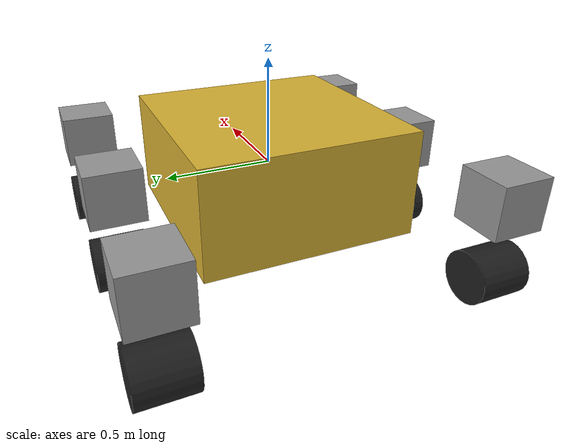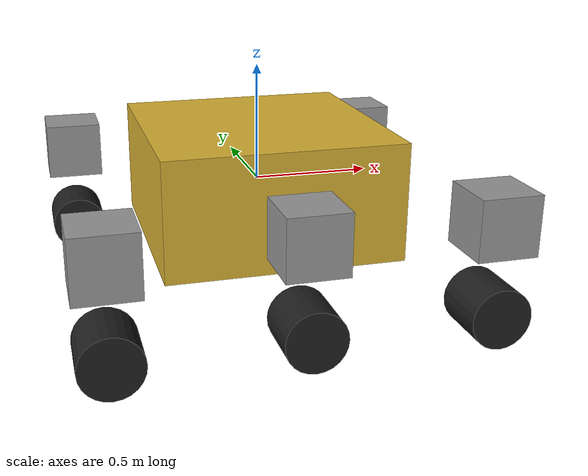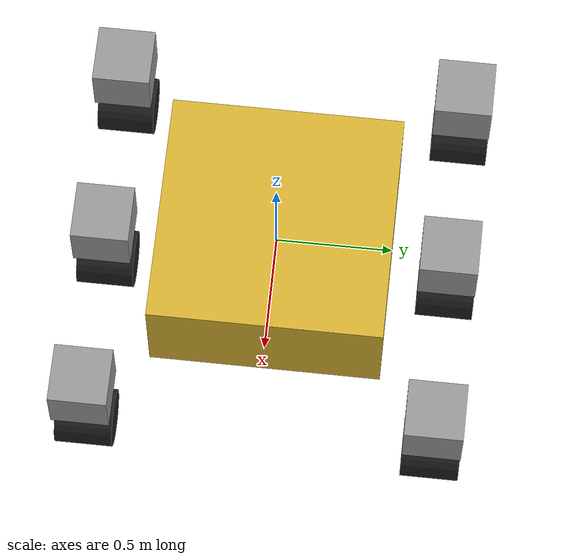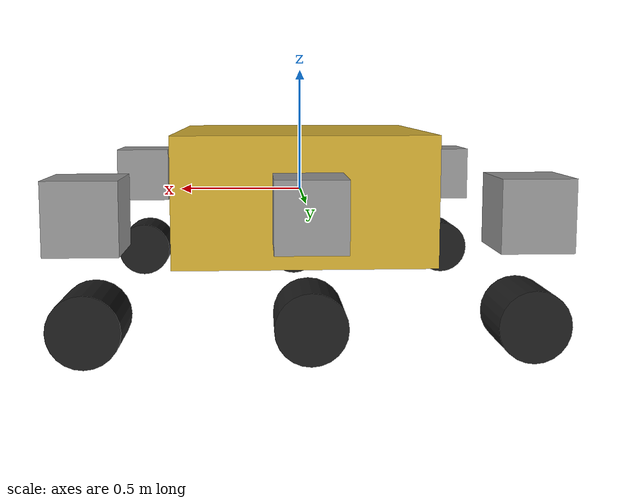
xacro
<?xml version="1.0"?>
<robot name="rover_dummy" xmlns:xacro="http://www.ros.org/wiki/xacro">
  <xacro:property name="mass" value="1.0" />
  <xacro:property name="damping" value="0.1" />
  <xacro:property name="friction" value="0.1" />
  <xacro:property name="size_base" value="1.0" />
  <xacro:property name="size_link" value="0.25" />
  <!-- Warning: the wheel_radius value must be the same as in the YAML configuration file-->
  <xacro:property name="wheel_radius" value="${size_link / 2}" />

  <xacro:property name="limit_drive_effort" value="100.0" />
  <xacro:property name="limit_drive_velocity" value="1.0" />
  <xacro:property name="limit_steer_effort" value="100.0" />
  <xacro:property name="limit_steer_lower" value="${-pi / 2}" />
  <xacro:property name="limit_steer_upper" value="${pi / 2}" />
  <xacro:property name="limit_steer_velocity" value="1.0" />

  <!-- Import all Gazebo-customization elements, including Gazebo colors and plugins -->
  <xacro:include filename="$(find rover_locomotion)/urdf/rover_dummy.gazebo" />

  <!-- Base of the rover, must be named "base_link" -->
  <link name="base_link">
    <collision>
      <origin xyz="0 0 0" rpy="0 0 0"/>
      <geometry>
        <box size="${size_base} ${size_base} ${size_base / 2}"/>
      </geometry>
    </collision>
    <inertial>
       <mass value="${mass}"/>
        <inertia
            ixx="${mass / 12.0 * (5 * size_base * size_base / 16)}"
            iyy="${mass / 12.0 * (5 * size_base * size_base / 16)}"
            izz="${mass / 12.0 * (size_base * size_base / 2)}"
            ixy="0"
            ixz="0"
            iyz="0"/>
    </inertial>
    <visual>
      <origin xyz="0 0 0" rpy="0 0 0"/>
      <geometry>
        <box size="${size_base} ${size_base} ${size_base / 2}"/>
      </geometry>
    </visual>
  </link>

  <!-- Definition for a wheel assembly -->
  <xacro:macro name="wheel_assembly" params="position *origin">
    <joint name="joint_steer_${position}" type="revolute">
      <parent link="base_link"/>
      <child link="link_${position}"/>
      <limit effort="${limit_steer_effort}" lower="${limit_steer_lower}" upper="${limit_steer_upper}" velocity="${limit_steer_velocity}"/>
      <xacro:insert_block name="origin" />
      <axis xyz="0 0 1"/>
      <dynamics damping="${damping}" friction="${friction}"/>
    </joint>

    <link name="link_${position}">
      <collision>
        <origin xyz="0 0 0" rpy="0 0 0"/>
        <geometry>
          <box size="${size_link} ${size_link} ${size_link}"/>
        </geometry>
      </collision>
      <inertial>
          <mass value="${mass}"/>
          <inertia
              ixx="${mass / 12.0 * (size_link * size_link / 2)}"
              iyy="${mass / 12.0 * (size_link * size_link / 2)}"
              izz="${mass / 12.0 * (size_link * size_link / 2)}"
              ixy="0"
              ixz="0"
              iyz="0"/>
      </inertial>
      <visual>
        <origin xyz="0 0 0" rpy="0 0 0"/>
        <geometry>
          <box size="${size_link} ${size_link} ${size_link}"/>
        </geometry>
      </visual>
    </link>

    <joint name="joint_drive_${position}" type="continuous">
      <parent link="link_${position}"/>
      <child link="wheel_${position}"/>
      <limit effort="${limit_drive_effort}" velocity="${limit_drive_velocity}"/>
      <origin xyz="0 0 ${-size_link / 2 - 2 * wheel_radius}" rpy="0 0 0"/>
      <axis xyz="0 1 0"/>
      <dynamics damping="${damping}" friction="${friction}"/>
    </joint>

    <link name="wheel_${position}">
      <collision>
        <origin xyz="0 0 0" rpy="${pi / 2} 0 0"/>
        <geometry>
          <cylinder length="${size_link}" radius="${wheel_radius}"/>
        </geometry>
      </collision>
      <inertial>
          <mass value="${mass}"/>
          <inertia
              ixx="${mass / 12.0 * (3 * wheel_radius * wheel_radius + size_link * size_link)}"
              iyy="${mass / 12.0 * (3 * wheel_radius * wheel_radius + size_link * size_link)}"
              izz="${mass / 2.0 * wheel_radius * wheel_radius}"
              ixy="0"
              ixz="0"
              iyz="0"/>
      </inertial>
      <visual>
        <origin xyz="0 0 0" rpy="${pi / 2} 0 0"/>
        <geometry>
          <cylinder length="${size_link}" radius="${wheel_radius}"/>
        </geometry>
      </visual>
    </link>

    <transmission name="transmission_steer_${position}">
      <type>transmission_interface/SimpleTransmission</type>
      <joint name="joint_steer_${position}">
        <hardwareInterface>hardware_interface/EffortJointInterface</hardwareInterface>
      </joint>
      <actuator name="motor_steer_${position}">
        <mechanicalReduction>1</mechanicalReduction>
      </actuator>
    </transmission>

    <transmission name="transmission_drive_${position}">
      <type>transmission_interface/SimpleTransmission</type>
      <joint name="joint_drive_${position}">
        <hardwareInterface>hardware_interface/EffortJointInterface</hardwareInterface>
      </joint>
      <actuator name="motor_drive_${position}">
        <mechanicalReduction>1</mechanicalReduction>
      </actuator>
    </transmission>
  </xacro:macro>

  <!-- Define all the wheel assemblies as set their positions -->
  <xacro:wheel_assembly position="back_left">
    <origin xyz="${-(size_base / 2 + size_link)} ${(size_base / 2 + size_link)} 0" rpy="0 0 0"/>
  </xacro:wheel_assembly>

  <xacro:wheel_assembly position="back_right">
    <origin xyz="${-(size_base / 2 + size_link)} ${-(size_base / 2 + size_link)} 0" rpy="0 0 0"/>
  </xacro:wheel_assembly>

  <xacro:wheel_assembly position="center_left">
    <origin xyz="0 ${(size_base / 2 + size_link)} 0" rpy="0 0 0"/>
  </xacro:wheel_assembly>

  <xacro:wheel_assembly position="center_right">
    <origin xyz="0 ${-(size_base / 2 + size_link)} 0" rpy="0 0 0"/>
  </xacro:wheel_assembly>

  <xacro:wheel_assembly position="front_left">
    <origin xyz="${(size_base / 2 + size_link)} ${(size_base / 2 + size_link)} 0" rpy="0 0 0"/>
  </xacro:wheel_assembly>

  <xacro:wheel_assembly position="front_right">
    <origin xyz="${(size_base / 2 + size_link)} ${-(size_base / 2 + size_link)} 0" rpy="0 0 0"/>
  </xacro:wheel_assembly>
</robot>
